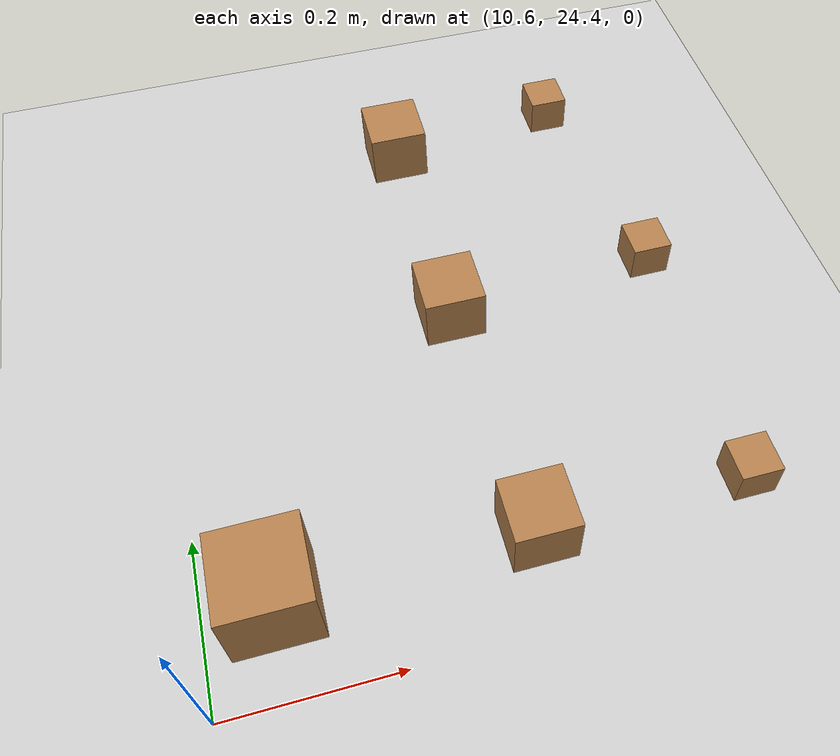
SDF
<sdf version="1.6">
 <world name="default">
  <model name="ground_plane">
   <static>1</static>
   <link name="link">
    <collision name="collision">
     <geometry><plane><normal>0 0 1</normal><size>105 105</size></plane></geometry>
     <surface>
      <contact><collide_bitmask>65535</collide_bitmask></contact>
      <friction><ode><mu>100</mu><mu2>50</mu2></ode></friction>
     </surface>
    </collision>
    <visual name="visual">
     <cast_shadows>0</cast_shadows>
     <geometry><plane><normal>0 0 1</normal><size>105 105</size></plane></geometry>
     <material>
      <script><uri>file://media/materials/scripts/gazebo.material</uri><name>Gazebo/Grey</name></script>
     </material>
    </visual>
   </link>
  </model>
  <model name="wood_cube_10cm_2">
   <link name="link">
    <pose>0 0 0.05 0 -0 0</pose>
    <inertial>
     <mass>0.5167</mass>
     <inertia>
      <ixx>0.000861167</ixx>
      <ixy>0</ixy>
      <ixz>0</ixz>
      <iyy>0.000861167</iyy>
      <iyz>0</iyz>
      <izz>0.000861167</izz>
     </inertia>
    </inertial>
    <collision name="collision">
     <geometry><box><size>0.1 0.1 0.1</size></box></geometry>
     <surface>
      <contact>
       <poissons_ratio>0.347</poissons_ratio>
       <elastic_modulus>8.8e+09</elastic_modulus>
       <ode><kp>100000</kp><kd>100</kd><max_vel>100</max_vel><min_depth>0.001</min_depth></ode>
      </contact>
      <friction>
       <torsional>
        <coefficient>1</coefficient>
        <use_patch_radius>0</use_patch_radius>
        <surface_radius>0.01</surface_radius>
       </torsional>
      </friction>
     </surface>
    </collision>
    <visual name="visual">
     <geometry><box><size>0.1 0.1 0.1</size></box></geometry>
     <material>
      <script><uri>file://media/materials/scripts/gazebo.material</uri><name>Gazebo/Wood</name></script>
     </material>
    </visual>
   </link>
   <pose>10.676 24.5061 -0.001013 0 -0 0</pose>
  </model>
  <model name="wood_cube_7_5cm_2">
   <link name="link">
    <pose>0 0 0.0375 0 -0 0</pose>
    <inertial>
     <mass>0.2249</mass>
     <inertia>
      <ixx>0.000210844</ixx>
      <ixy>0</ixy>
      <ixz>0</ixz>
      <iyy>0.000210844</iyy>
      <iyz>0</iyz>
      <izz>0.000210844</izz>
     </inertia>
    </inertial>
    <collision name="collision">
     <geometry><box><size>0.075 0.075 0.075</size></box></geometry>
     <surface>
      <contact>
       <poissons_ratio>0.347</poissons_ratio>
       <elastic_modulus>8.8e+09</elastic_modulus>
       <ode><kp>100000</kp><kd>100</kd><max_vel>100</max_vel><min_depth>0.001</min_depth></ode>
      </contact>
      <friction>
       <torsional>
        <coefficient>1</coefficient>
        <use_patch_radius>0</use_patch_radius>
        <surface_radius>0.01</surface_radius>
       </torsional>
      </friction>
     </surface>
    </collision>
    <visual name="visual">
     <geometry><box><size>0.075 0.075 0.075</size></box></geometry>
     <material>
      <script><uri>file://media/materials/scripts/gazebo.material</uri><name>Gazebo/Wood</name></script>
     </material>
    </visual>
   </link>
   <pose>10.9676 24.5094 -0.001006 0 -0 0</pose>
  </model>
  <model name="wood_cube_7_5cm_3">
   <link name="link">
    <pose>0 0 0.0375 0 -0 0</pose>
    <inertial>
     <mass>0.2249</mass>
     <inertia>
      <ixx>0.000210844</ixx>
      <ixy>0</ixy>
      <ixz>0</ixz>
      <iyy>0.000210844</iyy>
      <iyz>0</iyz>
      <izz>0.000210844</izz>
     </inertia>
    </inertial>
    <collision name="collision">
     <geometry><box><size>0.075 0.075 0.075</size></box></geometry>
     <surface>
      <contact>
       <poissons_ratio>0.347</poissons_ratio>
       <elastic_modulus>8.8e+09</elastic_modulus>
       <ode><kp>100000</kp><kd>100</kd><max_vel>100</max_vel><min_depth>0.001</min_depth></ode>
      </contact>
      <friction>
       <torsional>
        <coefficient>1</coefficient>
        <use_patch_radius>0</use_patch_radius>
        <surface_radius>0.01</surface_radius>
       </torsional>
      </friction>
     </surface>
    </collision>
    <visual name="visual">
     <geometry><box><size>0.075 0.075 0.075</size></box></geometry>
     <material>
      <script><uri>file://media/materials/scripts/gazebo.material</uri><name>Gazebo/Wood</name></script>
     </material>
    </visual>
   </link>
   <pose>10.9506 24.8272 -0.001006 0 -0 1.5e-05</pose>
  </model>
  <model name="wood_cube_7_5cm_4">
   <link name="link">
    <pose>0 0 0.0375 0 -0 0</pose>
    <inertial>
     <mass>0.2249</mass>
     <inertia>
      <ixx>0.000210844</ixx>
      <ixy>0</ixy>
      <ixz>0</ixz>
      <iyy>0.000210844</iyy>
      <iyz>0</iyz>
      <izz>0.000210844</izz>
     </inertia>
    </inertial>
    <collision name="collision">
     <geometry><box><size>0.075 0.075 0.075</size></box></geometry>
     <surface>
      <contact>
       <poissons_ratio>0.347</poissons_ratio>
       <elastic_modulus>8.8e+09</elastic_modulus>
       <ode><kp>100000</kp><kd>100</kd><max_vel>100</max_vel><min_depth>0.001</min_depth></ode>
      </contact>
      <friction>
       <torsional>
        <coefficient>1</coefficient>
        <use_patch_radius>0</use_patch_radius>
        <surface_radius>0.01</surface_radius>
       </torsional>
      </friction>
     </surface>
    </collision>
    <visual name="visual">
     <geometry><box><size>0.075 0.075 0.075</size></box></geometry>
     <material>
      <script><uri>file://media/materials/scripts/gazebo.material</uri><name>Gazebo/Wood</name></script>
     </material>
    </visual>
   </link>
   <pose>10.9473 25.1252 -0.001006 0 -0 5e-06</pose>
  </model>
  <model name="wood_cube_5cm_2">
   <link name="link">
    <pose>0 0 0.025 0 -0 0</pose>
    <inertial>
     <mass>0.0565</mass>
     <inertia>
      <ixx>2.35417e-05</ixx>
      <ixy>0</ixy>
      <ixz>0</ixz>
      <iyy>2.35417e-05</iyy>
      <iyz>0</iyz>
      <izz>2.35417e-05</izz>
     </inertia>
    </inertial>
    <collision name="collision">
     <geometry><box><size>0.05 0.05 0.05</size></box></geometry>
     <surface>
      <contact>
       <poissons_ratio>0.347</poissons_ratio>
       <elastic_modulus>8.8e+09</elastic_modulus>
       <ode><kp>100000</kp><kd>1</kd><max_vel>1</max_vel><min_depth>0.001</min_depth></ode>
      </contact>
      <friction>
       <torsional>
        <coefficient>1</coefficient>
        <use_patch_radius>0</use_patch_radius>
        <surface_radius>0.05</surface_radius>
       </torsional>
      </friction>
     </surface>
    </collision>
    <visual name="visual">
     <geometry><box><size>0.05 0.05 0.05</size></box></geometry>
     <material>
      <script><uri>file://media/materials/scripts/gazebo.material</uri><name>Gazebo/Wood</name></script>
     </material>
    </visual>
   </link>
   <pose>11.2193 24.5122 -0.001001 0 -0 0</pose>
  </model>
  <model name="wood_cube_5cm_3">
   <link name="link">
    <pose>0 0 0.025 0 -0 0</pose>
    <inertial>
     <mass>0.0565</mass>
     <inertia>
      <ixx>2.35417e-05</ixx>
      <ixy>0</ixy>
      <ixz>0</ixz>
      <iyy>2.35417e-05</iyy>
      <iyz>0</iyz>
      <izz>2.35417e-05</izz>
     </inertia>
    </inertial>
    <collision name="collision">
     <geometry><box><size>0.05 0.05 0.05</size></box></geometry>
     <surface>
      <contact>
       <poissons_ratio>0.347</poissons_ratio>
       <elastic_modulus>8.8e+09</elastic_modulus>
       <ode><kp>100000</kp><kd>1</kd><max_vel>1</max_vel><min_depth>0.001</min_depth></ode>
      </contact>
      <friction>
       <torsional>
        <coefficient>1</coefficient>
        <use_patch_radius>0</use_patch_radius>
        <surface_radius>0.05</surface_radius>
       </torsional>
      </friction>
     </surface>
    </collision>
    <visual name="visual">
     <geometry><box><size>0.05 0.05 0.05</size></box></geometry>
     <material>
      <script><uri>file://media/materials/scripts/gazebo.material</uri><name>Gazebo/Wood</name></script>
     </material>
    </visual>
   </link>
   <pose>11.2221 24.8504 -0.001001 0 -0 0</pose>
  </model>
  <model name="wood_cube_5cm_4">
   <link name="link">
    <pose>0 0 0.025 0 -0 0</pose>
    <inertial>
     <mass>0.0565</mass>
     <inertia>
      <ixx>2.35417e-05</ixx>
      <ixy>0</ixy>
      <ixz>0</ixz>
      <iyy>2.35417e-05</iyy>
      <iyz>0</iyz>
      <izz>2.35417e-05</izz>
     </inertia>
    </inertial>
    <collision name="collision">
     <geometry><box><size>0.05 0.05 0.05</size></box></geometry>
     <surface>
      <contact>
       <poissons_ratio>0.347</poissons_ratio>
       <elastic_modulus>8.8e+09</elastic_modulus>
       <ode><kp>100000</kp><kd>1</kd><max_vel>1</max_vel><min_depth>0.001</min_depth></ode>
      </contact>
      <friction>
       <torsional>
        <coefficient>1</coefficient>
        <use_patch_radius>0</use_patch_radius>
        <surface_radius>0.05</surface_radius>
       </torsional>
      </friction>
     </surface>
    </collision>
    <visual name="visual">
     <geometry><box><size>0.05 0.05 0.05</size></box></geometry>
     <material>
      <script><uri>file://media/materials/scripts/gazebo.material</uri><name>Gazebo/Wood</name></script>
     </material>
    </visual>
   </link>
   <pose>11.1789 25.1545 -0.001001 0 -0 0</pose>
  </model>
 </world>
</sdf>
